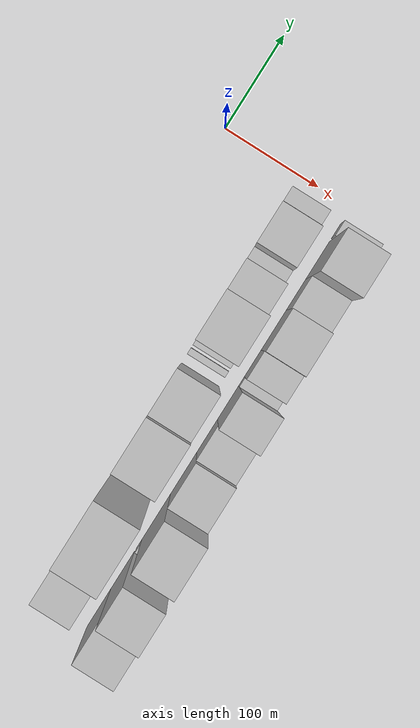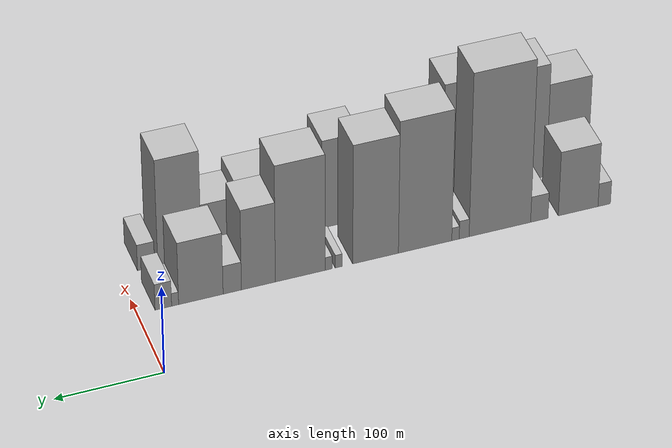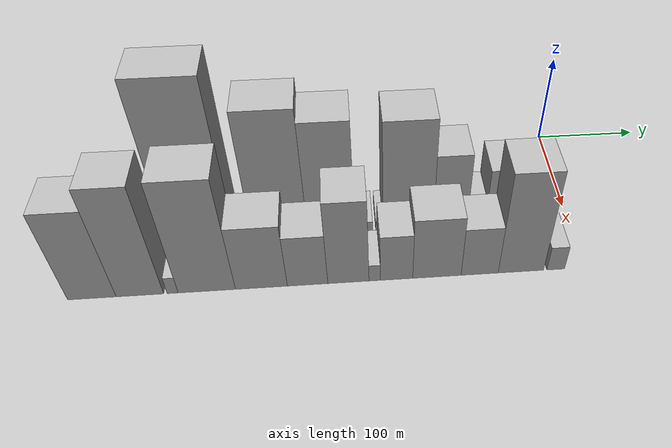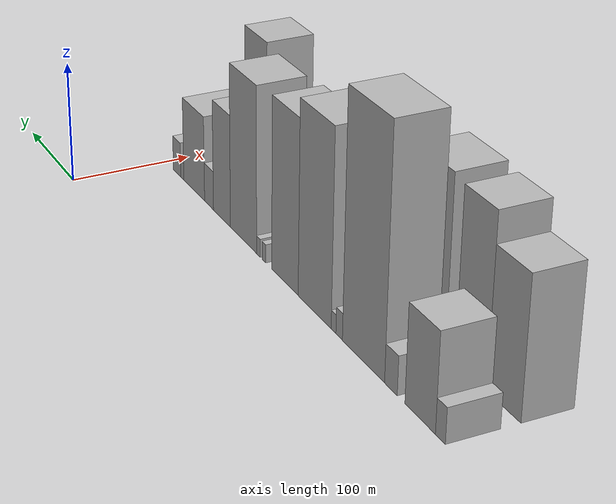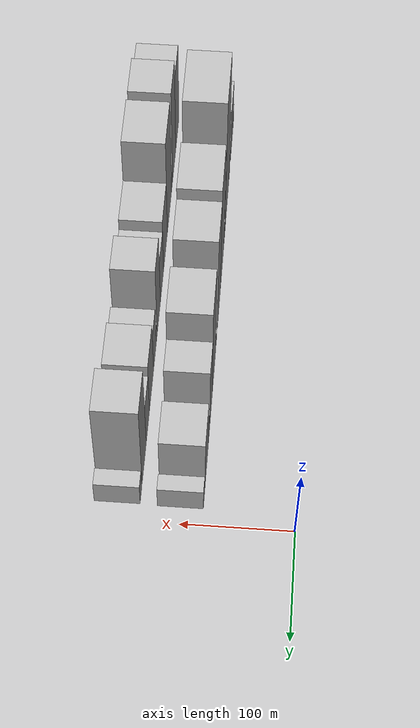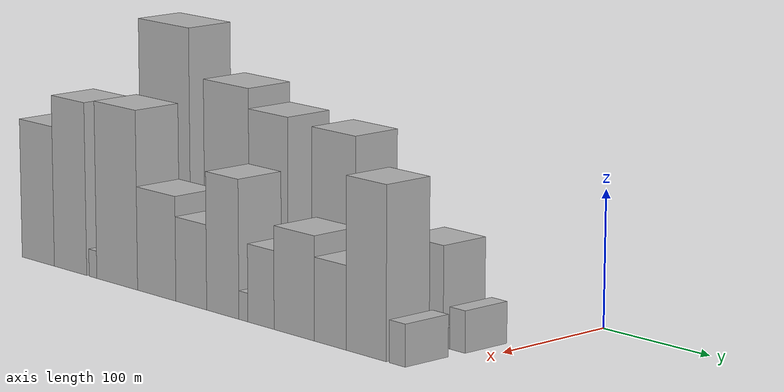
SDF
<sdf version="1.6">
 <world name="default">
  <model name="building_1">
   <static>1</static>
   <pose>100.0000 -443.9033 0 0.000000 0.000000 0.000000</pose>
   <link name="link">
    <pose>0 0 13.50 0 0 0</pose>
    <collision name="collision"><geometry><box><size>40.0000 12.1934 27.0000</size></box></geometry></collision>
    <visual name="visual">
     <cast_shadows>0</cast_shadows>
     <geometry><box><size>40.0000 12.1934 27.0000</size></box></geometry>
     <material>
      <script>
       <uri>model://HANNAS_wall/materials/scripts</uri>
       <uri>model://HANNAS_wall/materials/textures</uri>
       <name>vrc/HANNAS_wall</name>
      </script>
     </material>
    </visual>
   </link>
  </model>
  <model name="building_2">
   <static>1</static>
   <pose>100.0000 -418.4260 0 0.000000 0.000000 0.000000</pose>
   <link name="link">
    <pose>0 0 37.50 0 0 0</pose>
    <collision name="collision"><geometry><box><size>40.0000 38.7613 75.0000</size></box></geometry></collision>
    <visual name="visual">
     <cast_shadows>0</cast_shadows>
     <geometry><box><size>40.0000 38.7613 75.0000</size></box></geometry>
     <material>
      <script>
       <uri>model://HANNAS_wall/materials/scripts</uri>
       <uri>model://HANNAS_wall/materials/textures</uri>
       <name>vrc/HANNAS_wall</name>
      </script>
     </material>
    </visual>
   </link>
  </model>
  <model name="building_3">
   <static>1</static>
   <pose>100.0000 -380.5688 0 0.000000 0.000000 0.000000</pose>
   <link name="link">
    <pose>0 0 15.00 0 0 0</pose>
    <collision name="collision"><geometry><box><size>40.0000 16.9530 30.0000</size></box></geometry></collision>
    <visual name="visual">
     <cast_shadows>0</cast_shadows>
     <geometry><box><size>40.0000 16.9530 30.0000</size></box></geometry>
     <material>
      <script>
       <uri>model://HANNAS_wall/materials/scripts</uri>
       <uri>model://HANNAS_wall/materials/textures</uri>
       <name>vrc/HANNAS_wall</name>
      </script>
     </material>
    </visual>
   </link>
  </model>
  <model name="building_4">
   <static>1</static>
   <pose>100.0000 -342.3621 0 0.000000 0.000000 0.000000</pose>
   <link name="link">
    <pose>0 0 94.50 0 0 0</pose>
    <collision name="collision"><geometry><box><size>40.0000 59.4605 189.0000</size></box></geometry></collision>
    <visual name="visual">
     <cast_shadows>0</cast_shadows>
     <geometry><box><size>40.0000 59.4605 189.0000</size></box></geometry>
     <material>
      <script>
       <uri>model://HANNAS_wall/materials/scripts</uri>
       <uri>model://HANNAS_wall/materials/textures</uri>
       <name>vrc/HANNAS_wall</name>
      </script>
     </material>
    </visual>
   </link>
  </model>
  <model name="building_5">
   <static>1</static>
   <pose>100.0000 -307.8741 0 0.000000 0.000000 0.000000</pose>
   <link name="link">
    <pose>0 0 10.50 0 0 0</pose>
    <collision name="collision"><geometry><box><size>40.0000 9.5156 21.0000</size></box></geometry></collision>
    <visual name="visual">
     <cast_shadows>0</cast_shadows>
     <geometry><box><size>40.0000 9.5156 21.0000</size></box></geometry>
     <material>
      <script>
       <uri>model://HANNAS_wall/materials/scripts</uri>
       <uri>model://HANNAS_wall/materials/textures</uri>
       <name>vrc/HANNAS_wall</name>
      </script>
     </material>
    </visual>
   </link>
  </model>
  <model name="building_6">
   <static>1</static>
   <pose>100.0000 -299.5554 0 0.000000 0.000000 0.000000</pose>
   <link name="link">
    <pose>0 0 7.50 0 0 0</pose>
    <collision name="collision"><geometry><box><size>40.0000 7.1216 15.0000</size></box></geometry></collision>
    <visual name="visual">
     <cast_shadows>0</cast_shadows>
     <geometry><box><size>40.0000 7.1216 15.0000</size></box></geometry>
     <material>
      <script>
       <uri>model://HANNAS_wall/materials/scripts</uri>
       <uri>model://HANNAS_wall/materials/textures</uri>
       <name>vrc/HANNAS_wall</name>
      </script>
     </material>
    </visual>
   </link>
  </model>
  <model name="building_7">
   <static>1</static>
   <pose>100.0000 -270.4288 0 0.000000 0.000000 0.000000</pose>
   <link name="link">
    <pose>0 0 76.50 0 0 0</pose>
    <collision name="collision"><geometry><box><size>40.0000 51.1316 153.0000</size></box></geometry></collision>
    <visual name="visual">
     <cast_shadows>0</cast_shadows>
     <geometry><box><size>40.0000 51.1316 153.0000</size></box></geometry>
     <material>
      <script>
       <uri>model://HANNAS_wall/materials/scripts</uri>
       <uri>model://HANNAS_wall/materials/textures</uri>
       <name>vrc/HANNAS_wall</name>
      </script>
     </material>
    </visual>
   </link>
  </model>
  <model name="building_8">
   <static>1</static>
   <pose>100.0000 -223.1393 0 0.000000 0.000000 0.000000</pose>
   <link name="link">
    <pose>0 0 69.00 0 0 0</pose>
    <collision name="collision"><geometry><box><size>40.0000 43.4473 138.0000</size></box></geometry></collision>
    <visual name="visual">
     <cast_shadows>0</cast_shadows>
     <geometry><box><size>40.0000 43.4473 138.0000</size></box></geometry>
     <material>
      <script>
       <uri>model://HANNAS_wall/materials/scripts</uri>
       <uri>model://HANNAS_wall/materials/textures</uri>
       <name>vrc/HANNAS_wall</name>
      </script>
     </material>
    </visual>
   </link>
  </model>
  <model name="building_9">
   <static>1</static>
   <pose>100.0000 -188.1694 0 0.000000 0.000000 0.000000</pose>
   <link name="link">
    <pose>0 0 7.50 0 0 0</pose>
    <collision name="collision"><geometry><box><size>40.0000 6.4925 15.0000</size></box></geometry></collision>
    <visual name="visual">
     <cast_shadows>0</cast_shadows>
     <geometry><box><size>40.0000 6.4925 15.0000</size></box></geometry>
     <material>
      <script>
       <uri>model://HANNAS_wall/materials/scripts</uri>
       <uri>model://HANNAS_wall/materials/textures</uri>
       <name>vrc/HANNAS_wall</name>
      </script>
     </material>
    </visual>
   </link>
  </model>
  <model name="building_10">
   <static>1</static>
   <pose>100.0000 -178.6271 0 0.000000 0.000000 0.000000</pose>
   <link name="link">
    <pose>0 0 7.50 0 0 0</pose>
    <collision name="collision"><geometry><box><size>40.0000 6.5922 15.0000</size></box></geometry></collision>
    <visual name="visual">
     <cast_shadows>0</cast_shadows>
     <geometry><box><size>40.0000 6.5922 15.0000</size></box></geometry>
     <material>
      <script>
       <uri>model://HANNAS_wall/materials/scripts</uri>
       <uri>model://HANNAS_wall/materials/textures</uri>
       <name>vrc/HANNAS_wall</name>
      </script>
     </material>
    </visual>
   </link>
  </model>
  <model name="building_11">
   <static>1</static>
   <pose>100.0000 -151.9508 0 0.000000 0.000000 0.000000</pose>
   <link name="link">
    <pose>0 0 67.50 0 0 0</pose>
    <collision name="collision"><geometry><box><size>40.0000 46.7603 135.0000</size></box></geometry></collision>
    <visual name="visual">
     <cast_shadows>0</cast_shadows>
     <geometry><box><size>40.0000 46.7603 135.0000</size></box></geometry>
     <material>
      <script>
       <uri>model://HANNAS_wall/materials/scripts</uri>
       <uri>model://HANNAS_wall/materials/textures</uri>
       <name>vrc/HANNAS_wall</name>
      </script>
     </material>
    </visual>
   </link>
  </model>
  <model name="building_12">
   <static>1</static>
   <pose>100.0000 -112.6563 0 0.000000 0.000000 0.000000</pose>
   <link name="link">
    <pose>0 0 46.50 0 0 0</pose>
    <collision name="collision"><geometry><box><size>40.0000 31.8286 93.0000</size></box></geometry></collision>
    <visual name="visual">
     <cast_shadows>0</cast_shadows>
     <geometry><box><size>40.0000 31.8286 93.0000</size></box></geometry>
     <material>
      <script>
       <uri>model://HANNAS_wall/materials/scripts</uri>
       <uri>model://HANNAS_wall/materials/textures</uri>
       <name>vrc/HANNAS_wall</name>
      </script>
     </material>
    </visual>
   </link>
  </model>
  <model name="building_13">
   <static>1</static>
   <pose>100.0000 -88.1731 0 0.000000 0.000000 0.000000</pose>
   <link name="link">
    <pose>0 0 16.50 0 0 0</pose>
    <collision name="collision"><geometry><box><size>40.0000 17.1380 33.0000</size></box></geometry></collision>
    <visual name="visual">
     <cast_shadows>0</cast_shadows>
     <geometry><box><size>40.0000 17.1380 33.0000</size></box></geometry>
     <material>
      <script>
       <uri>model://HANNAS_wall/materials/scripts</uri>
       <uri>model://HANNAS_wall/materials/textures</uri>
       <name>vrc/HANNAS_wall</name>
      </script>
     </material>
    </visual>
   </link>
  </model>
  <model name="building_14">
   <static>1</static>
   <pose>100.0000 -58.9410 0 0.000000 0.000000 0.000000</pose>
   <link name="link">
    <pose>0 0 36.00 0 0 0</pose>
    <collision name="collision"><geometry><box><size>40.0000 41.3262 72.0000</size></box></geometry></collision>
    <visual name="visual">
     <cast_shadows>0</cast_shadows>
     <geometry><box><size>40.0000 41.3262 72.0000</size></box></geometry>
     <material>
      <script>
       <uri>model://HANNAS_wall/materials/scripts</uri>
       <uri>model://HANNAS_wall/materials/textures</uri>
       <name>vrc/HANNAS_wall</name>
      </script>
     </material>
    </visual>
   </link>
  </model>
  <model name="building_15">
   <static>1</static>
   <pose>100.0000 -35.0279 0 0.000000 0.000000 0.000000</pose>
   <link name="link">
    <pose>0 0 7.50 0 0 0</pose>
    <collision name="collision"><geometry><box><size>40.0000 6.4999 15.0000</size></box></geometry></collision>
    <visual name="visual">
     <cast_shadows>0</cast_shadows>
     <geometry><box><size>40.0000 6.4999 15.0000</size></box></geometry>
     <material>
      <script>
       <uri>model://HANNAS_wall/materials/scripts</uri>
       <uri>model://HANNAS_wall/materials/textures</uri>
       <name>vrc/HANNAS_wall</name>
      </script>
     </material>
    </visual>
   </link>
  </model>
  <model name="building_16">
   <static>1</static>
   <pose>100.0000 -24.1176 0 0.000000 0.000000 0.000000</pose>
   <link name="link">
    <pose>0 0 15.00 0 0 0</pose>
    <collision name="collision"><geometry><box><size>40.0000 15.3207 30.0000</size></box></geometry></collision>
    <visual name="visual">
     <cast_shadows>0</cast_shadows>
     <geometry><box><size>40.0000 15.3207 30.0000</size></box></geometry>
     <material>
      <script>
       <uri>model://HANNAS_wall/materials/scripts</uri>
       <uri>model://HANNAS_wall/materials/textures</uri>
       <name>vrc/HANNAS_wall</name>
      </script>
     </material>
    </visual>
   </link>
  </model>
  <model name="building_29">
   <static>1</static>
   <pose>155.0000 -429.5524 0 0.000000 0.000000 0.000000</pose>
   <link name="link">
    <pose>0 0 54.00 0 0 0</pose>
    <collision name="collision"><geometry><box><size>40.0000 40.8953 108.0000</size></box></geometry></collision>
    <visual name="visual">
     <cast_shadows>0</cast_shadows>
     <geometry><box><size>40.0000 40.8953 108.0000</size></box></geometry>
     <material>
      <script>
       <uri>model://HANNAS_wall/materials/scripts</uri>
       <uri>model://HANNAS_wall/materials/textures</uri>
       <name>vrc/HANNAS_wall</name>
      </script>
     </material>
    </visual>
   </link>
  </model>
  <model name="building_30">
   <static>1</static>
   <pose>155.0000 -389.0187 0 0.000000 0.000000 0.000000</pose>
   <link name="link">
    <pose>0 0 66.00 0 0 0</pose>
    <collision name="collision"><geometry><box><size>40.0000 40.1720 132.0000</size></box></geometry></collision>
    <visual name="visual">
     <cast_shadows>0</cast_shadows>
     <geometry><box><size>40.0000 40.1720 132.0000</size></box></geometry>
     <material>
      <script>
       <uri>model://HANNAS_wall/materials/scripts</uri>
       <uri>model://HANNAS_wall/materials/textures</uri>
       <name>vrc/HANNAS_wall</name>
      </script>
     </material>
    </visual>
   </link>
  </model>
  <model name="building_31">
   <static>1</static>
   <pose>155.0000 -361.2592 0 0.000000 0.000000 0.000000</pose>
   <link name="link">
    <pose>0 0 10.50 0 0 0</pose>
    <collision name="collision"><geometry><box><size>40.0000 9.3469 21.0000</size></box></geometry></collision>
    <visual name="visual">
     <cast_shadows>0</cast_shadows>
     <geometry><box><size>40.0000 9.3469 21.0000</size></box></geometry>
     <material>
      <script>
       <uri>model://HANNAS_wall/materials/scripts</uri>
       <uri>model://HANNAS_wall/materials/textures</uri>
       <name>vrc/HANNAS_wall</name>
      </script>
     </material>
    </visual>
   </link>
  </model>
  <model name="building_32">
   <static>1</static>
   <pose>155.0000 -332.0616 0 0.000000 0.000000 0.000000</pose>
   <link name="link">
    <pose>0 0 67.50 0 0 0</pose>
    <collision name="collision"><geometry><box><size>40.0000 49.0482 135.0000</size></box></geometry></collision>
    <visual name="visual">
     <cast_shadows>0</cast_shadows>
     <geometry><box><size>40.0000 49.0482 135.0000</size></box></geometry>
     <material>
      <script>
       <uri>model://HANNAS_wall/materials/scripts</uri>
       <uri>model://HANNAS_wall/materials/textures</uri>
       <name>vrc/HANNAS_wall</name>
      </script>
     </material>
    </visual>
   </link>
  </model>
  <model name="building_33">
   <static>1</static>
   <pose>155.0000 -285.1329 0 0.000000 0.000000 0.000000</pose>
   <link name="link">
    <pose>0 0 39.00 0 0 0</pose>
    <collision name="collision"><geometry><box><size>40.0000 44.8092 78.0000</size></box></geometry></collision>
    <visual name="visual">
     <cast_shadows>0</cast_shadows>
     <geometry><box><size>40.0000 44.8092 78.0000</size></box></geometry>
     <material>
      <script>
       <uri>model://HANNAS_wall/materials/scripts</uri>
       <uri>model://HANNAS_wall/materials/textures</uri>
       <name>vrc/HANNAS_wall</name>
      </script>
     </material>
    </visual>
   </link>
  </model>
  <model name="building_34">
   <static>1</static>
   <pose>155.0000 -245.1449 0 0.000000 0.000000 0.000000</pose>
   <link name="link">
    <pose>0 0 31.50 0 0 0</pose>
    <collision name="collision"><geometry><box><size>40.0000 35.1667 63.0000</size></box></geometry></collision>
    <visual name="visual">
     <cast_shadows>0</cast_shadows>
     <geometry><box><size>40.0000 35.1667 63.0000</size></box></geometry>
     <material>
      <script>
       <uri>model://HANNAS_wall/materials/scripts</uri>
       <uri>model://HANNAS_wall/materials/textures</uri>
       <name>vrc/HANNAS_wall</name>
      </script>
     </material>
    </visual>
   </link>
  </model>
  <model name="building_35">
   <static>1</static>
   <pose>155.0000 -209.5585 0 0.000000 0.000000 0.000000</pose>
   <link name="link">
    <pose>0 0 51.00 0 0 0</pose>
    <collision name="collision"><geometry><box><size>40.0000 36.0061 102.0000</size></box></geometry></collision>
    <visual name="visual">
     <cast_shadows>0</cast_shadows>
     <geometry><box><size>40.0000 36.0061 102.0000</size></box></geometry>
     <material>
      <script>
       <uri>model://HANNAS_wall/materials/scripts</uri>
       <uri>model://HANNAS_wall/materials/textures</uri>
       <name>vrc/HANNAS_wall</name>
      </script>
     </material>
    </visual>
   </link>
  </model>
  <model name="building_36">
   <static>1</static>
   <pose>155.0000 -186.6163 0 0.000000 0.000000 0.000000</pose>
   <link name="link">
    <pose>0 0 10.50 0 0 0</pose>
    <collision name="collision"><geometry><box><size>40.0000 9.8783 21.0000</size></box></geometry></collision>
    <visual name="visual">
     <cast_shadows>0</cast_shadows>
     <geometry><box><size>40.0000 9.8783 21.0000</size></box></geometry>
     <material>
      <script>
       <uri>model://HANNAS_wall/materials/scripts</uri>
       <uri>model://HANNAS_wall/materials/textures</uri>
       <name>vrc/HANNAS_wall</name>
      </script>
     </material>
    </visual>
   </link>
  </model>
  <model name="building_37">
   <static>1</static>
   <pose>155.0000 -167.3990 0 0.000000 0.000000 0.000000</pose>
   <link name="link">
    <pose>0 0 28.50 0 0 0</pose>
    <collision name="collision"><geometry><box><size>40.0000 28.5563 57.0000</size></box></geometry></collision>
    <visual name="visual">
     <cast_shadows>0</cast_shadows>
     <geometry><box><size>40.0000 28.5563 57.0000</size></box></geometry>
     <material>
      <script>
       <uri>model://HANNAS_wall/materials/scripts</uri>
       <uri>model://HANNAS_wall/materials/textures</uri>
       <name>vrc/HANNAS_wall</name>
      </script>
     </material>
    </visual>
   </link>
  </model>
  <model name="building_38">
   <static>1</static>
   <pose>155.0000 -131.6866 0 0.000000 0.000000 0.000000</pose>
   <link name="link">
    <pose>0 0 37.50 0 0 0</pose>
    <collision name="collision"><geometry><box><size>40.0000 42.8687 75.0000</size></box></geometry></collision>
    <visual name="visual">
     <cast_shadows>0</cast_shadows>
     <geometry><box><size>40.0000 42.8687 75.0000</size></box></geometry>
     <material>
      <script>
       <uri>model://HANNAS_wall/materials/scripts</uri>
       <uri>model://HANNAS_wall/materials/textures</uri>
       <name>vrc/HANNAS_wall</name>
      </script>
     </material>
    </visual>
   </link>
  </model>
  <model name="building_39">
   <static>1</static>
   <pose>155.0000 -93.7112 0 0.000000 0.000000 0.000000</pose>
   <link name="link">
    <pose>0 0 30.00 0 0 0</pose>
    <collision name="collision"><geometry><box><size>40.0000 33.0820 60.0000</size></box></geometry></collision>
    <visual name="visual">
     <cast_shadows>0</cast_shadows>
     <geometry><box><size>40.0000 33.0820 60.0000</size></box></geometry>
     <material>
      <script>
       <uri>model://HANNAS_wall/materials/scripts</uri>
       <uri>model://HANNAS_wall/materials/textures</uri>
       <name>vrc/HANNAS_wall</name>
      </script>
     </material>
    </visual>
   </link>
  </model>
  <model name="building_40">
   <static>1</static>
   <pose>155.0000 -56.7668 0 0.000000 0.000000 0.000000</pose>
   <link name="link">
    <pose>0 0 61.50 0 0 0</pose>
    <collision name="collision"><geometry><box><size>40.0000 40.8070 123.0000</size></box></geometry></collision>
    <visual name="visual">
     <cast_shadows>0</cast_shadows>
     <geometry><box><size>40.0000 40.8070 123.0000</size></box></geometry>
     <material>
      <script>
       <uri>model://HANNAS_wall/materials/scripts</uri>
       <uri>model://HANNAS_wall/materials/textures</uri>
       <name>vrc/HANNAS_wall</name>
      </script>
     </material>
    </visual>
   </link>
  </model>
  <model name="building_41">
   <static>1</static>
   <pose>155.0000 -25.3772 0 0.000000 0.000000 0.000000</pose>
   <link name="link">
    <pose>0 0 15.00 0 0 0</pose>
    <collision name="collision"><geometry><box><size>40.0000 15.9722 30.0000</size></box></geometry></collision>
    <visual name="visual">
     <cast_shadows>0</cast_shadows>
     <geometry><box><size>40.0000 15.9722 30.0000</size></box></geometry>
     <material>
      <script>
       <uri>model://HANNAS_wall/materials/scripts</uri>
       <uri>model://HANNAS_wall/materials/textures</uri>
       <name>vrc/HANNAS_wall</name>
      </script>
     </material>
    </visual>
   </link>
  </model>
 </world>
</sdf>
